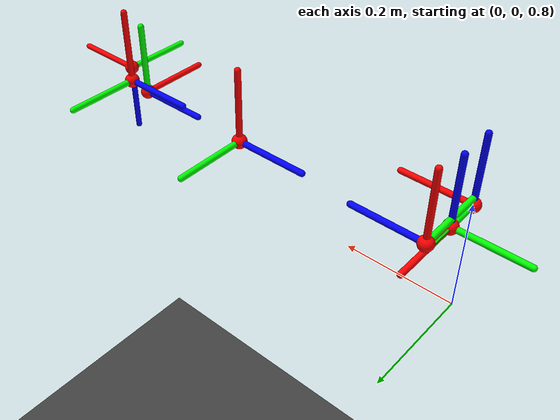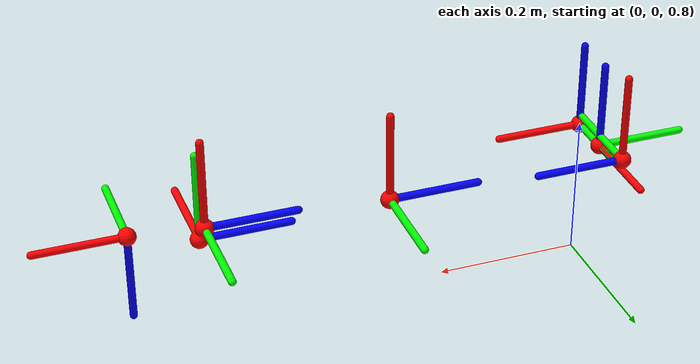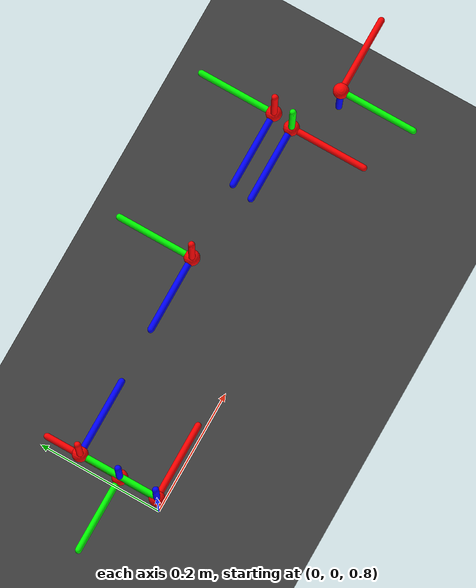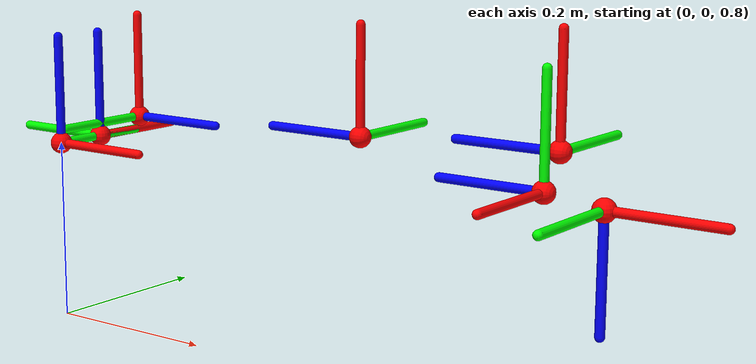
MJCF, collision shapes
<mujoco model="engineer_arm_urdf">
    <compiler angle="radian" meshdir="./meshes/" />
    <size njmax="500" nconmax="100" />
    <option gravity="0 0 0"/>
    <asset>
    <texture type="skybox" builtin="gradient" rgb1="0.4 0.6 0.8" width="128" height="128"/>
        <texture name="plane" type="2d" builtin="checker" rgb1="0.2 0.2 0.2" rgb2="0.3 0.3 0.3" width="500" height="500" />
        <material name="plane" reflectance="0.0" texture="plane" texrepeat="1 1" texuniform="true"/>
        <mesh name="base_link" file="base_link.STL" />
        <mesh name="link1" file="link1.STL" />
        <mesh name="link2" file="link2.STL" />
        <mesh name="link3" file="link3.STL" />
        <mesh name="link4" file="link4.STL" />
        <mesh name="link5" file="link5.STL" />
        <mesh name="link6" file="link6.STL" />
    </asset>
    <worldbody>
        <light directional="false" cutoff="60" exponent="1" diffuse=".5 .5 .5" specular=".1 .1 .1" pos="0.5 0.1 0.8" dir="-0.5 -0.1 -0.8"/>
        <geom name="floor" pos="0  0  0" size="20 20 20" type="plane" material="plane" condim="3" conaffinity="15" friction=".7 .001 .001" contype="6"/>
        <body name="link0" pos="0 0 1">
            <geom type="sphere" size="0.012" pos="0 0 0" rgba="1 0 0 1"/>
            <geom type="capsule" fromto="0 0 0   0.12 0 0" size="0.005" rgba="1 0 0 1"/>
            <geom type="capsule" fromto="0 0 0   0 0.12 0" size="0.005" rgba="0 1 0 1"/>
            <geom type="capsule" fromto="0 0 0   0 0 0.12" size="0.005" rgba="0 0 1 1"/>
            <inertial pos="-0.0181394 0.0247175 8.3939691E-05" mass="0.879212" diaginertia="0.0015848 0.0014979 0.0016803" />
            <geom type="mesh" contype="0" conaffinity="0" group="1" rgba="0.792157 0.819608 0.933333 1" mesh="base_link" />
            <body name="link1" pos="0 0.061 0" quat="0.707107 0 0 0.707107">
                <geom type="sphere" size="0.012" pos="0 0 0" rgba="1 0 0 1"/>
                <geom type="capsule" fromto="0 0 0   0.12 0 0" size="0.005" rgba="1 0 0 1"/>
                <geom type="capsule" fromto="0 0 0   0 0.12 0" size="0.005" rgba="0 1 0 1"/>
                <geom type="capsule" fromto="0 0 0   0 0 0.12" size="0.005" rgba="0 0 1 1"/>
                <inertial pos="0.0560009 -6.1835e-05 -0.00164064" quat="-0.00114916 0.690741 -0.00202277 0.723099" mass="1.27101" diaginertia="0.00695093 0.0063972 0.00206677" />
                <joint name="joint1"  pos="0 0 0" axis="-1 0 0"  damping='0'/>
                <geom type="mesh" contype="0" conaffinity="0" group="1" rgba="0.898039 0.917647 0.929412 1" mesh="link1" />
                <body name="link2" pos="0.065 0 0.0145" quat="0.5 0.5 -0.5 0.5">
                    <geom type="sphere" size="0.012" pos="0 0 0" rgba="1 0 0 1"/>
                    <geom type="capsule" fromto="0 0 0   0.12 0 0" size="0.005" rgba="1 0 0 1"/>
                    <geom type="capsule" fromto="0 0 0   0 0.12 0" size="0.005" rgba="0 1 0 1"/>
                    <geom type="capsule" fromto="0 0 0   0 0 0.12" size="0.005" rgba="0 0 1 1"/>
                    <inertial pos="-0.0154337 2.61446e-06 0.189044" quat="0.706837 0.018405 0.0183932 0.706897" mass="1.06003" diaginertia="0.0634036 0.0628541 0.00138825" />
                    <joint name="joint2"  pos="0 0 0" axis="-1 0 0"  damping='200'/>
                    <geom type="mesh" contype="0" conaffinity="0" group="1" rgba="0.898039 0.917647 0.929412 1" mesh="link2" />
                    <body name="link3" pos="0.0093 0 0.325" quat="0 -1 0 0">
                        <geom type="sphere" size="0.012" pos="0 0 0" rgba="1 0 0 1"/>
                        <geom type="capsule" fromto="0 0 0   0.12 0 0" size="0.005" rgba="1 0 0 1"/>
                        <geom type="capsule" fromto="0 0 0   0 0.12 0" size="0.005" rgba="0 1 0 1"/>
                        <geom type="capsule" fromto="0 0 0   0 0 0.12" size="0.005" rgba="0 0 1 1"/>
                        <inertial pos="0.0328573 0.000118784 -0.187894" quat="0.811502 0.0435992 0.0615724 0.579458" mass="0.513825" diaginertia="0.0256099 0.0255955 0.00023995" />
                        <joint name="joint3"  pos="0 0 0" axis="-1 0 0"  damping='10'/>
                        <geom type="mesh" contype="0" conaffinity="0" group="1" rgba="0.898039 0.917647 0.929412 1" mesh="link3" />
                        <body name="link4" pos="0.0112 0 -0.24">
                            <geom type="sphere" size="0.012" pos="0 0 0" rgba="1 0 0 1"/>
                            <geom type="capsule" fromto="0 0 0   0.12 0 0" size="0.005" rgba="1 0 0 1"/>
                            <geom type="capsule" fromto="0 0 0   0 0.12 0" size="0.005" rgba="0 1 0 1"/>
                            <geom type="capsule" fromto="0 0 0   0 0 0.12" size="0.005" rgba="0 0 1 1"/>
                            <inertial pos="-0.0321935 -0.00380224 -0.000173813" quat="0.514831 0.540679 0.45861 0.481968" mass="0.350379" diaginertia="0.000571153 0.000556075 0.000174272" />
                            <joint name="joint4" pos="0 0 0" axis="-1 0 0"  damping='0.2'/>
                            <geom type="mesh" contype="0" conaffinity="0" group="1" rgba="0.898039 0.917647 0.929412 1" mesh="link4" />
                            <body name="link5" pos="-0.035 -0.03 0" quat="0.707107 0 0 -0.707107">
                                <geom type="sphere" size="0.012" pos="0 0 0" rgba="1 0 0 1"/>
                                <geom type="capsule" fromto="0 0 0   0.12 0 0" size="0.005" rgba="1 0 0 1"/>
                                <geom type="capsule" fromto="0 0 0   0 0.12 0" size="0.005" rgba="0 1 0 1"/>
                                <geom type="capsule" fromto="0 0 0   0 0 0.12" size="0.005" rgba="0 0 1 1"/>
                                <inertial pos="0.0331935 -0.000173813 -0.00380224" quat="0.0164138 0.666211 0.0180357 0.745364" mass="0.350379" diaginertia="0.000594173 0.000579075 0.000174253" />
                                <joint name="joint5"  pos="0 0 0" axis="-1 0 0"  damping='2'/>
                                <geom type="mesh" contype="0" conaffinity="0" group="1" rgba="0.898039 0.917647 0.929412 1" mesh="link5" />
                                <body name="link6" pos="0.036 0 -0.083" quat="0.5 0.5 0.5 -0.5">
                                    <!-- ===== 可视化末端坐标系 ===== -->
                                    <geom type="sphere" size="0.012" pos="0 0 0" rgba="1 0 0 1"/>
                                    <geom type="capsule" fromto="0 0 0   0.12 0 0" size="0.005" rgba="1 0 0 1"/>
                                    <geom type="capsule" fromto="0 0 0   0 0.12 0" size="0.005" rgba="0 1 0 1"/>
                                    <geom type="capsule" fromto="0 0 0   0 0 0.12" size="0.005" rgba="0 0 1 1"/>
                                    <inertial pos="-0.0203388 -5.59496e-05 -0.000683683" quat="0.0302976 0.707327 0.0302304 0.705589" mass="0.183108" diaginertia="0.000153122 0.000150178 7.50995e-05" />
                                    <joint name="joint6"  pos="0 0 0" axis="1 0 0"  damping='0.2'/>
                                    <geom type="mesh" contype="0" conaffinity="0" group="1" rgba="0.898039 0.917647 0.929412 1" mesh="link6" />
                                </body>
                            </body>
                        </body>
                    </body>
                </body>
            </body>
        </body>
    </worldbody>
        <!-- 避免奇异位形的 home pose -->
    <actuator>
        <motor gear="50000" joint="joint1" name="motor1" ctrllimited="true"  ctrlrange='-90 90'/>
        <motor gear="1000" joint="joint2" name="motor2" ctrllimited="true"  ctrlrange='-90 90'/>
        <motor gear="200" joint="joint3" name="motor3" ctrllimited="true"  ctrlrange='-36 36'/>
        <motor gear="100" joint="joint4" name="motor4" ctrllimited="true"  ctrlrange='-6 6'/>
        <motor gear="100" joint="joint5" name="motor5" ctrllimited="true"  ctrlrange='-6 6'/>
        <motor gear="100" joint="joint6" name="motor6" ctrllimited="true"  ctrlrange='-6 6'/>
    </actuator>

</mujoco>
